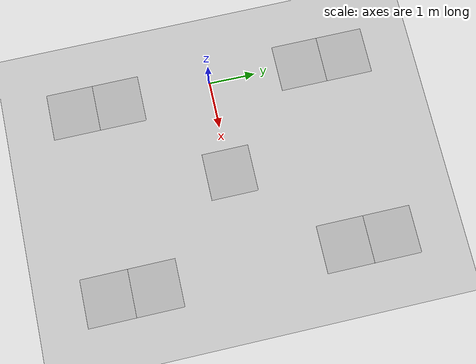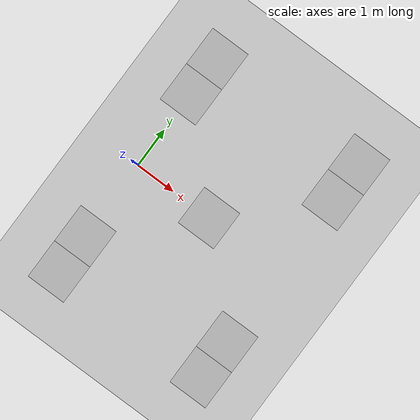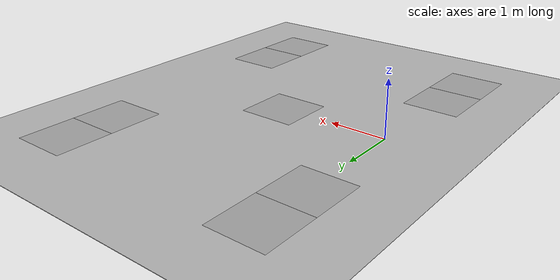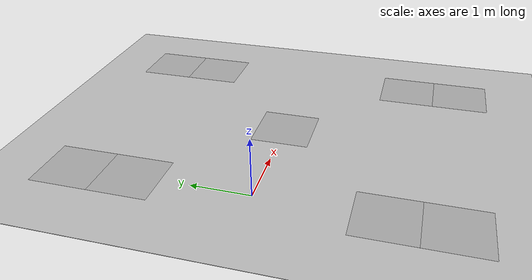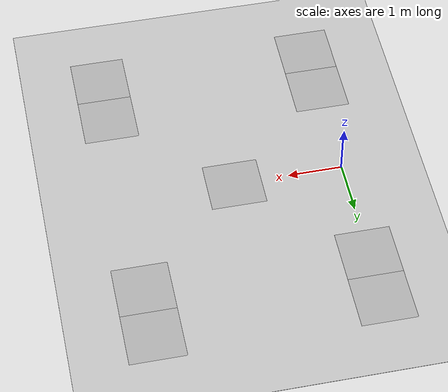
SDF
<sdf version="1.4">
 <world name="default">
  <model name="ground_plane">
   <static>1</static>
   <link name="link">
    <collision name="collision">
     <geometry><plane><normal>0 0 1</normal><size>100 100</size></plane></geometry>
     <surface><friction><ode><mu>100</mu><mu2>50</mu2></ode></friction></surface>
    </collision>
    <visual name="visual">
     <transparency>1</transparency>
     <cast_shadows>0</cast_shadows>
     <geometry><plane><normal>0 0 1</normal><size>100 100</size></plane></geometry>
     <material><script><uri>file://media/materials/scripts/gazebo.material</uri></script></material>
    </visual>
   </link>
  </model>
  <include><uri>model://sun</uri></include>
  <model name="floor">
   <pose>-5 0 -0.4612  0 0 0</pose>
   <static>true</static>
   <link name="body">
    <visual name="visual">
     <geometry>
      <mesh>
       <uri>file:///home/sou/catkin_ws/src/turtlebot3_simulations/turtlebot3_gazebo/models/road_meshes/floor.dae</uri>
       <scale>10 10 0.5</scale>
      </mesh>
     </geometry>
    </visual>
   </link>
  </model>
  <model name="road1">
   <pose>0 3 0  0 0 1.57079</pose>
   <static>true</static>
   <link name="body">
    <visual name="visual">
     <geometry>
      <mesh>
       <uri>file:///home/sou/catkin_ws/src/turtlebot3_simulations/turtlebot3_gazebo/models/road_meshes/road3.dae</uri>
       <scale>0.5 0.5 0.5</scale>
      </mesh>
     </geometry>
    </visual>
   </link>
  </model>
  <model name="road5">
   <pose>4 3 0  0 0 0.00000</pose>
   <static>true</static>
   <link name="body">
    <visual name="visual">
     <geometry>
      <mesh>
       <uri>file:///home/sou/catkin_ws/src/turtlebot3_simulations/turtlebot3_gazebo/models/road_meshes/road3.dae</uri>
       <scale>0.5 0.5 0.5</scale>
      </mesh>
     </geometry>
    </visual>
   </link>
  </model>
  <model name="road6">
   <pose>0 2 0  0 0 0.00000</pose>
   <static>true</static>
   <link name="body">
    <visual name="visual">
     <geometry>
      <mesh>
       <uri>file:///home/sou/catkin_ws/src/turtlebot3_simulations/turtlebot3_gazebo/models/road_meshes/road6.dae</uri>
       <scale>0.5 0.5 0.5</scale>
      </mesh>
     </geometry>
    </visual>
   </link>
  </model>
  <model name="road10">
   <pose>4 2 0  0 0 0.00000</pose>
   <static>true</static>
   <link name="body">
    <visual name="visual">
     <geometry>
      <mesh>
       <uri>file:///home/sou/catkin_ws/src/turtlebot3_simulations/turtlebot3_gazebo/models/road_meshes/road6.dae</uri>
       <scale>0.5 0.5 0.5</scale>
      </mesh>
     </geometry>
    </visual>
   </link>
  </model>
  <model name="road18">
   <pose>2 0 0  0 0 1.57079</pose>
   <static>true</static>
   <link name="body">
    <visual name="visual">
     <geometry>
      <mesh>
       <uri>file:///home/sou/catkin_ws/src/turtlebot3_simulations/turtlebot3_gazebo/models/road_meshes/road8.dae</uri>
       <scale>0.5 0.5 0.5</scale>
      </mesh>
     </geometry>
    </visual>
   </link>
  </model>
  <model name="road26">
   <pose>0 -2 0  0 0 0.00000</pose>
   <static>true</static>
   <link name="body">
    <visual name="visual">
     <geometry>
      <mesh>
       <uri>file:///home/sou/catkin_ws/src/turtlebot3_simulations/turtlebot3_gazebo/models/road_meshes/road6.dae</uri>
       <scale>0.5 0.5 0.5</scale>
      </mesh>
     </geometry>
    </visual>
   </link>
  </model>
  <model name="road30">
   <pose>4 -2 0  0 0 0.00000</pose>
   <static>true</static>
   <link name="body">
    <visual name="visual">
     <geometry>
      <mesh>
       <uri>file:///home/sou/catkin_ws/src/turtlebot3_simulations/turtlebot3_gazebo/models/road_meshes/road6.dae</uri>
       <scale>0.5 0.5 0.5</scale>
      </mesh>
     </geometry>
    </visual>
   </link>
  </model>
  <model name="road31">
   <pose>0 -3 0  0 0 -3.14158</pose>
   <static>true</static>
   <link name="body">
    <visual name="visual">
     <geometry>
      <mesh>
       <uri>file:///home/sou/catkin_ws/src/turtlebot3_simulations/turtlebot3_gazebo/models/road_meshes/road3.dae</uri>
       <scale>0.5 0.5 0.5</scale>
      </mesh>
     </geometry>
    </visual>
   </link>
  </model>
  <model name="road35">
   <pose>4 -3 0  0 0 -1.57079</pose>
   <static>true</static>
   <link name="body">
    <visual name="visual">
     <geometry>
      <mesh>
       <uri>file:///home/sou/catkin_ws/src/turtlebot3_simulations/turtlebot3_gazebo/models/road_meshes/road3.dae</uri>
       <scale>0.5 0.5 0.5</scale>
      </mesh>
     </geometry>
    </visual>
   </link>
  </model>
  <light name="user_directional_light_0" type="directional">
   <pose>1.50806 1.18329 3 0 -0 0</pose>
   <diffuse>0.5 0.5 0.5 1</diffuse>
   <specular>0.1 0.1 0.1 1</specular>
   <direction>0.1 0.1 -0.9</direction>
   <attenuation>
    <range>20</range>
    <constant>0.5</constant>
    <linear>0.01</linear>
    <quadratic>0.001</quadratic>
   </attenuation>
  </light>
  <scene>
   <ambient>0.4 0.4 0.4 1</ambient>
   <background>0.7 0.7 0.7 1</background>
   <shadows>1</shadows>
   <grid>false</grid>
   <origin_visual>false</origin_visual>
  </scene>
  <light name="user_directional_light_1" type="directional">
   <pose>1.50806 1.18329 3 0 -0 0</pose>
   <diffuse>0.5 0.7 0.5 1</diffuse>
   <specular>0.1 0.1 0.1 1</specular>
   <direction>0.1 0.1 -0.9</direction>
   <attenuation>
    <range>20</range>
    <constant>0.5</constant>
    <linear>0.01</linear>
    <quadratic>0.001</quadratic>
   </attenuation>
  </light>
  <scene>
   <ambient>0.4 0.4 0.4 1</ambient>
   <background>0.7 0.7 0.7 1</background>
   <shadows>1</shadows>
   <grid>false</grid>
   <origin_visual>false</origin_visual>
  </scene>
 </world>
</sdf>
